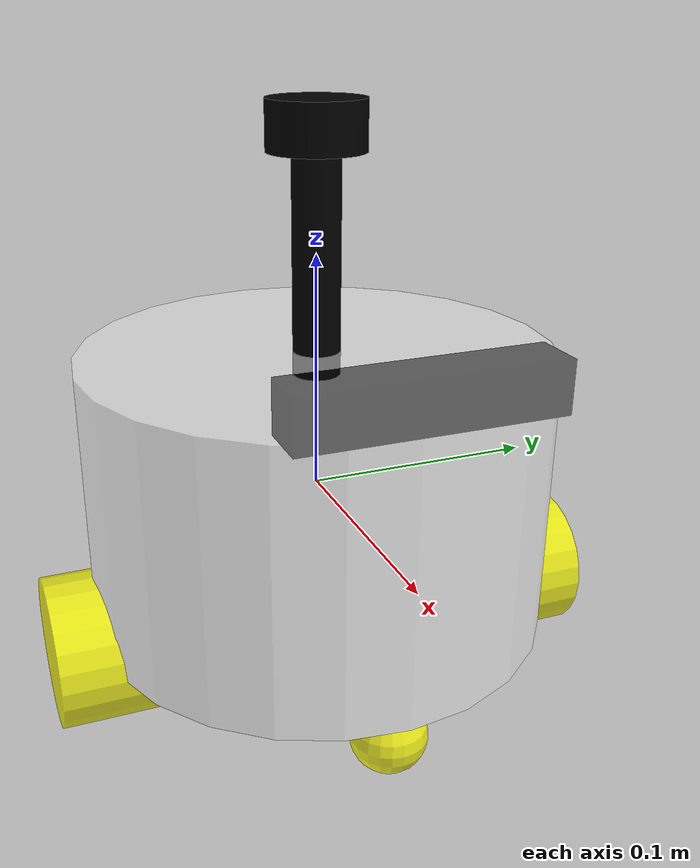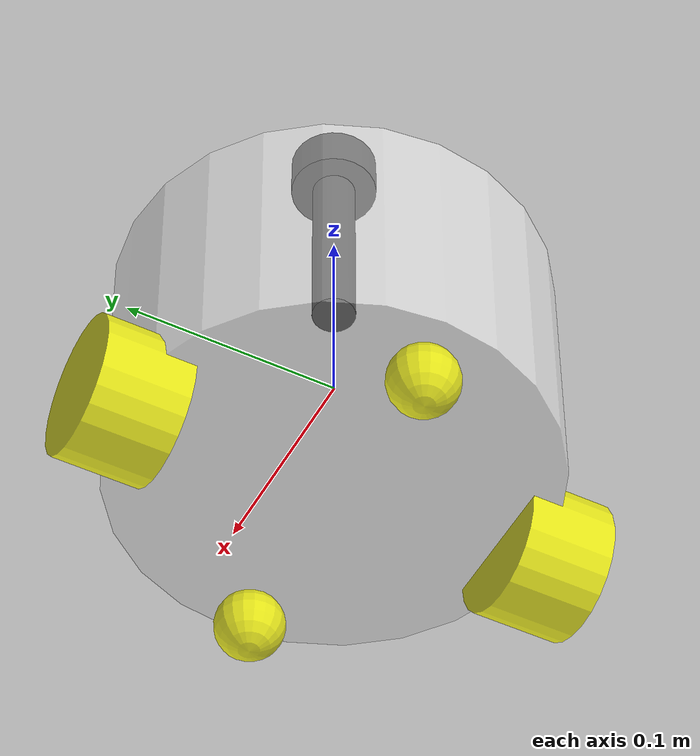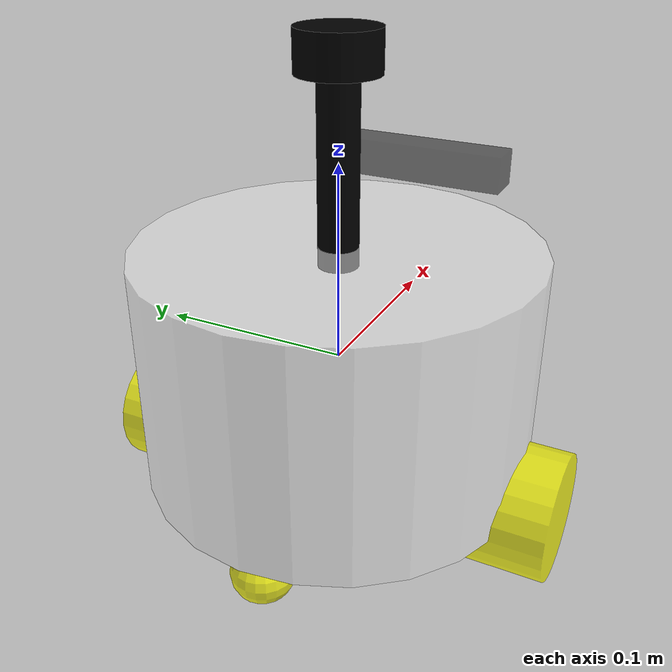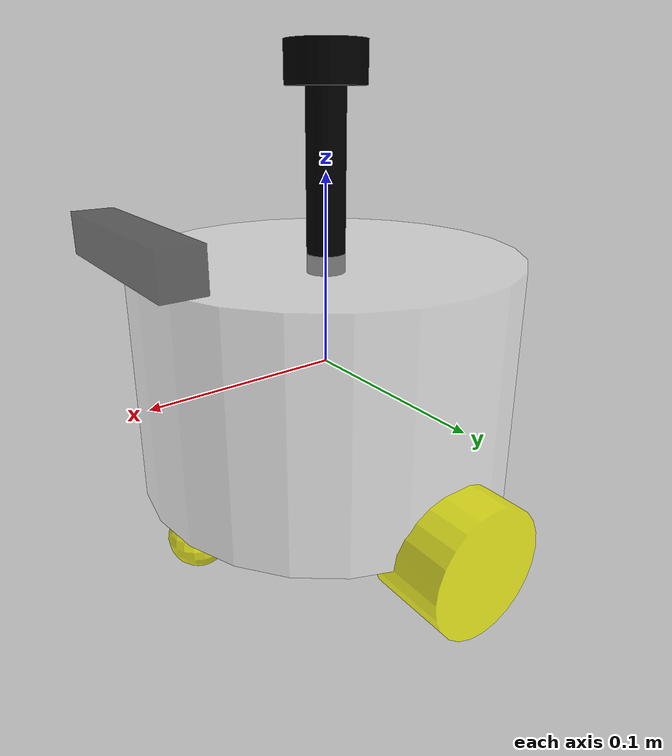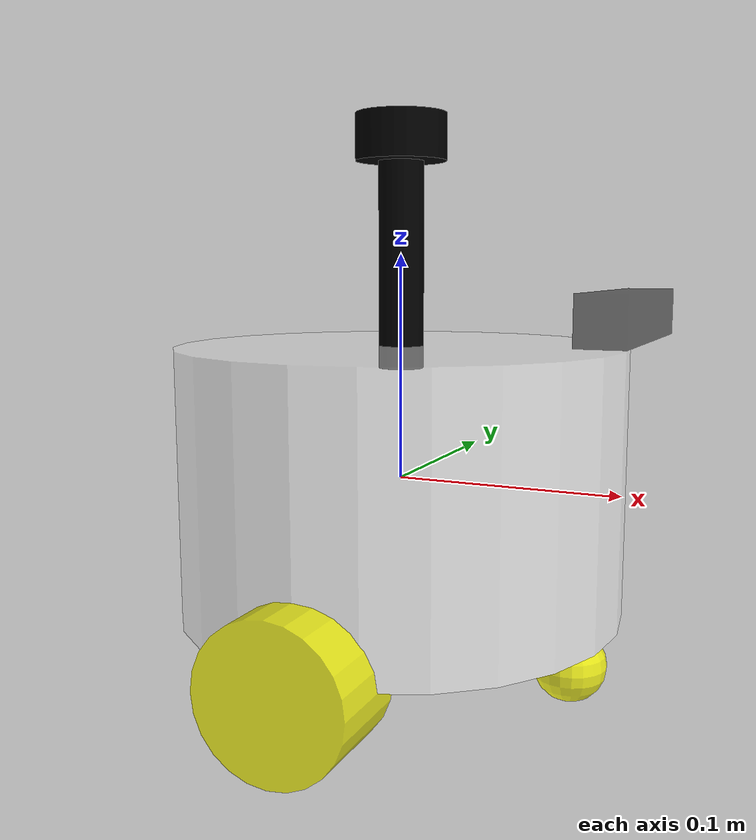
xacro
<?xml version="1.0"?>
<robot xmlns:xacro="http://www.ros.org/wiki/xacro" name="fishbot">

<!-- 基础部分 -->
<xacro:include filename="$(find fishbot_description)/urdf/fishbot/base.urdf.xacro"/>
<!-- 传感器 -->
<xacro:include filename="$(find fishbot_description)/urdf/fishbot/sensor/camera.urdf.xacro"/>
<xacro:include filename="$(find fishbot_description)/urdf/fishbot/sensor/laser.urdf.xacro"/>
<xacro:include filename="$(find fishbot_description)/urdf/fishbot/sensor/imu.urdf.xacro"/>
<!-- 执行器部分 -->
<xacro:include filename="$(find fishbot_description)/urdf/fishbot/actuator/wheel.urdf.xacro"/>
<xacro:include filename="$(find fishbot_description)/urdf/fishbot/actuator/caster.urdf.xacro"/>
<!-- 插件 -->
<xacro:include filename="$(find fishbot_description)/urdf/fishbot/plugins/gazebo_control_plugin.xacro"/>
<xacro:include filename="$(find fishbot_description)/urdf/fishbot/plugins/gazebo_sensor_plugin.xacro"/>
<xacro:include filename="$(find fishbot_description)/urdf/fishbot/fishbot.ros2_control.xacro"/>

<xacro:base_xacro length="0.12" radius="0.10" />
<xacro:imu_xacro xyz="0.0 0.0 0.02" />
<xacro:camera_xacro xyz="0.10 0.0 0.075" />
<xacro:laser_xacro xyz="0.0 0.0 0.10" />
<xacro:wheel_xacro wheel_name="left_wheel" xyz="0.0 0.10 -0.06" />
<xacro:wheel_xacro wheel_name="right_wheel" xyz="0.0 -0.10 -0.06" />
<xacro:caster_xacro caster_name="front_caster_wheel" xyz="0.08 0.0 -0.076" />
<xacro:caster_xacro caster_name="back_caster_wheel" xyz="-0.08 0.0 -0.076" />

<xacro:gazebo_sensor_plugin/>
<xacro:fishbot_ros2_control/>

</robot>

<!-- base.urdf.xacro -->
<robot xmlns:xacro="http://www.ros.org/wiki/xacro">
    <!-- 机器人身体部分 -->
    <xacro:macro name="base_xacro" params="length radius">
    <xacro:include filename="$(find fishbot_description)/urdf/fishbot/common_inertia.xacro"/>

        <link name="base_link">
            <visual>
                <origin xyz="0.0 0.0 0.0" rpy="0.0 0.0 0.0"/>
                <geometry>
                    <cylinder radius="${radius}" length="${length}"/>
                </geometry>
                <material name="white">
                    <color rgba="1.0 1.0 1.0 0.5"/>
                </material>
            </visual>
            <collision>
                <origin xyz="0.0 0.0 0.0" rpy="0.0 0.0 0.0"/>
                <geometry>
                    <cylinder radius="${radius}" length="${length}"/>
                </geometry>
            </collision>
            <xacro:cylinder_inertia m="1.0" r="${radius}" h="${length}"/>
        </link>

        <!-- 不再需要 base_footprint 和 fixed joint -->
    </xacro:macro>

</robot>

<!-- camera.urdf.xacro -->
<robot xmlns:xacro="http://www.ros.org/wiki/xacro">
    <xacro:macro name="camera_xacro" params="xyz">

    <xacro:include filename="$(find fishbot_description)/urdf/fishbot/common_inertia.xacro"/>
        <!-- 机器人的IMU部件，惯性测量传感器 -->
        <link name="camera_link">
            <!-- 部件外观描述 -->
            <visual>
                <!-- 沿着自己几何中心的偏移与旋转 -->
                <origin xyz="0.0 0.0 0.0" rpy="0.0 0.0 0.0"/>
                <!-- 几何形状 -->
                <geometry>
                    <box size="0.02 0.10 0.02"/>
                </geometry>
                <!-- 材质颜色 -->
                <material name="black">
                    <color rgba="0.0 0.0 0.0 0.5"/>
                </material>
            </visual>
            <collision>
                <!-- 沿着自己几何中心的偏移与旋转 -->
                <origin xyz="0.0 0.0 0.0" rpy="0.0 0.0 0.0"/>
                <!-- 几何形状 -->
                <geometry>
                    <box size="0.02 0.10 0.02"/>
                </geometry>
                <!-- 材质颜色 -->
                <material name="black">
                    <color rgba="0.0 0.0 0.0 0.5"/>
                </material>
            </collision>
            <xacro:box_inertia m="0.1" w="0.02" h="0.10" d="0.02"/>

        </link>

        <link name="camera_optical_link"></link>

        <!-- 机器人的关节，用于组合机器人的部件 -->
        <joint name="camera_link_joint" type="fixed">
            <origin xyz="${xyz}" rpy="0.0 0.0 0.0"/>
            <parent link="base_link"/>
            <child link="camera_link"/>
        </joint>
        <joint name="camera_link_optical_joint" type="fixed">
            <origin xyz="0 0 0" rpy="${-pi/2} 0.0 ${-pi/2}"/>
            <parent link="camera_link"/>
            <child link="camera_optical_link"/>
        </joint>
    </xacro:macro>

</robot>

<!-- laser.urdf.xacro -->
<robot xmlns:xacro="http://www.ros.org/wiki/xacro">
    <xacro:macro name="laser_xacro" params="xyz">

    <xacro:include filename="$(find fishbot_description)/urdf/fishbot/common_inertia.xacro"/>
        <!-- 雷达支撑杆 -->
        <link name="laser_cylinder_link">
            <!-- 部件外观描述 -->
            <visual>
                <!-- 沿着自己几何中心的偏移与旋转 -->
                <origin xyz="0.0 0.0 0.0" rpy="0.0 0.0 0.0"/>
                <!-- 几何形状 -->
                <geometry>
                    <cylinder radius="0.01" length="0.10"/>
                </geometry>
                <!-- 材质颜色 -->
                <material name="black">
                    <color rgba="0.0 0.0 0.0 1.0"/>
                </material>
            </visual>
            <collision>
                <!-- 沿着自己几何中心的偏移与旋转 -->
                <origin xyz="0.0 0.0 0.0" rpy="0.0 0.0 0.0"/>
                <!-- 几何形状 -->
                <geometry>
                    <cylinder radius="0.01" length="0.10"/>
                </geometry>
                <!-- 材质颜色 -->
                <material name="black">
                    <color rgba="0.0 0.0 0.0 1.0"/>
                </material>
            </collision>
            <xacro:cylinder_inertia m="0.05" r="0.01" h="0.10"/>
        </link>

        <!-- 雷达 -->
        <link name="laser_link">
            <!-- 部件外观描述 -->
            <visual>
                <!-- 沿着自己几何中心的偏移与旋转 -->
                <origin xyz="0.0 0.0 0.0" rpy="0.0 0.0 0.0"/>
                <!-- 几何形状 -->
                <geometry>
                    <cylinder radius="0.02" length="0.02"/>
                </geometry>
                <!-- 材质颜色 -->
                <material name="black">
                    <color rgba="0.0 0.0 0.0 1.0"/>
                </material>
            </visual>
            <collision>
                <!-- 沿着自己几何中心的偏移与旋转 -->
                <origin xyz="0.0 0.0 0.0" rpy="0.0 0.0 0.0"/>
                <!-- 几何形状 -->
                <geometry>
                    <cylinder radius="0.02" length="0.02"/>
                </geometry>
                <!-- 材质颜色 -->
                <material name="black">
                    <color rgba="0.0 0.0 0.0 1.0"/>
                </material>
            </collision>
            <xacro:cylinder_inertia m="0.10" r="0.02" h="0.02"/>

        </link>

        <!-- 机器人的关节，用于组合机器人的部件 -->
        <joint name="laser_cylinder_joint" type="fixed">
            <origin xyz="0.0 0.0 0.05" rpy="0.0 0.0 0.0"/>
            <parent link="laser_cylinder_link"/>
            <child link="laser_link"/>
        </joint>

        <!-- 机器人的关节，用于组合机器人的部件 -->
        <joint name="laser_joint" type="fixed">
            <origin xyz="${xyz}" rpy="0.0 0.0 0.0"/>
            <parent link="base_link"/>
            <child link="laser_cylinder_link"/>
        </joint>
    </xacro:macro>

</robot>

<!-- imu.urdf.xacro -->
<robot xmlns:xacro="http://www.ros.org/wiki/xacro">
    <xacro:macro name="imu_xacro" params="xyz">

    <xacro:include filename="$(find fishbot_description)/urdf/fishbot/common_inertia.xacro"/>
        <!-- 机器人的IMU部件，惯性测量传感器 -->
        <link name="imu_link">
            <!-- 部件外观描述 -->
            <visual>
                <!-- 沿着自己几何中心的偏移与旋转 -->
                <origin xyz="0.0 0.0 0.0" rpy="0.0 0.0 0.0"/>
                <!-- 几何形状 -->
                <geometry>
                    <box size="0.02 0.02 0.02"/>
                </geometry>
                <!-- 材质颜色 -->
                <material name="black">
                    <color rgba="0.0 0.0 0.0 0.5"/>
                </material>
            </visual>
            <collision>
                <!-- 沿着自己几何中心的偏移与旋转 -->
                <origin xyz="0.0 0.0 0.0" rpy="0.0 0.0 0.0"/>
                <!-- 几何形状 -->
                <geometry>
                    <box size="0.02 0.02 0.02"/>
                </geometry>
                <!-- 材质颜色 -->
                <material name="black">
                    <color rgba="0.0 0.0 0.0 0.5"/>
                </material>
            </collision>
            <xacro:box_inertia m="0.01" w="0.02" h="0.02" d="0.02"/>

        </link>

        <!-- 机器人的关节，用于组合机器人的部件 -->
        <joint name="imu_link_joint" type="fixed">
            <origin xyz="${xyz}" rpy="0.0 0.0 0.0"/>
            <parent link="base_link"/>
            <child link="imu_link"/>
        </joint>
    </xacro:macro>

</robot>

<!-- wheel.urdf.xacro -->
<robot xmlns:xacro="http://www.ros.org/wiki/xacro">
    <xacro:macro name="wheel_xacro" params="wheel_name xyz">

    <xacro:include filename="$(find fishbot_description)/urdf/fishbot/common_inertia.xacro"/>
        <!-- 机器人的IMU部件，惯性测量传感器 -->
        <link name="${wheel_name}_link">
            <!-- 部件外观描述 -->
            <visual>
                <!-- 沿着自己几何中心的偏移与旋转 -->
                <origin xyz="0.0 0.0 0.0" rpy="1.57079 0.0 0.0"/>
                <!-- 几何形状 -->
                <geometry>
                    <cylinder radius="0.032" length="0.04"/>
                </geometry>
                <!-- 材质颜色 -->
                <material name="yellow">
                    <color rgba="1.0 1.0 0.0 0.8"/>
                </material>
            </visual>
            <collision>
                <!-- 沿着自己几何中心的偏移与旋转 -->
                <origin xyz="0.0 0.0 0.0" rpy="1.57079 0.0 0.0"/>
                <!-- 几何形状 -->
                <geometry>
                    <cylinder radius="0.032" length="0.04"/>
                </geometry>
                <!-- 材质颜色 -->
                <material name="yellow">
                    <color rgba="1.0 1.0 0.0 0.8"/>
                </material>
            </collision>
            <xacro:cylinder_inertia m="0.05" r="0.032" h="0.04"/>

        </link>

        <!-- 机器人的关节，用于组合机器人的部件 -->
        <joint name="${wheel_name}_link_joint" type="continuous">
            <origin xyz="${xyz}" rpy="0.0 0.0 0.0"/>
            <parent link="base_link"/>
            <child link="${wheel_name}_link"/>
            <!-- 绕y轴旋转 -->
            <axis xyz="0.0 1.0 0.0"/>
        </joint>

        <gazebo reference="${wheel_name}_link">
            <mu1 value="20.0"/>
            <mu2 value="20.0"/>
            <kp value="1000000000.0"/>
            <kd value="1.0"/>
        </gazebo>
    </xacro:macro>

</robot>

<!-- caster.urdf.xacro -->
<robot xmlns:xacro="http://www.ros.org/wiki/xacro">
    <xacro:macro name="caster_xacro" params="caster_name xyz">
    <xacro:include filename="$(find fishbot_description)/urdf/fishbot/common_inertia.xacro"/>

        <link name="${caster_name}_link">
            <visual>
                <origin xyz="0.0 0.0 0.0" rpy="0.0 0.0 0.0"/>
                <geometry>
                    <sphere radius="0.016"/>
                </geometry>
                <material name="yellow">
                    <color rgba="1.0 1.0 0.0 0.8"/>
                </material>
            </visual>
            <collision>
                <origin xyz="0.0 0.0 0.0" rpy="0.0 0.0 0.0"/>
                <geometry>
                    <sphere radius="0.016"/>
                </geometry>
                <material name="yellow">
                    <color rgba="1.0 1.0 0.0 0.8"/>
                </material>
            </collision>
            <xacro:sphere_inertia m="0.05" r="0.016"/>
        </link>

        <!-- ⭐ 改这里：fixed -> continuous，并加上 axis -->
        <joint name="${caster_name}_link_joint" type="fixed">
            <origin xyz="${xyz}" rpy="0.0 0.0 0.0"/>
            <parent link="base_link"/>
            <child link="${caster_name}_link"/>
            <axis xyz="0.0 1.0 0.0"/>
        </joint>

        <gazebo reference="${caster_name}_link">
            <mu1 value="0.0"/>
            <mu2 value="0.0"/>
            <kp value="1000000000.0"/>
            <kd value="1.0"/>
        </gazebo>
    </xacro:macro>
</robot>
